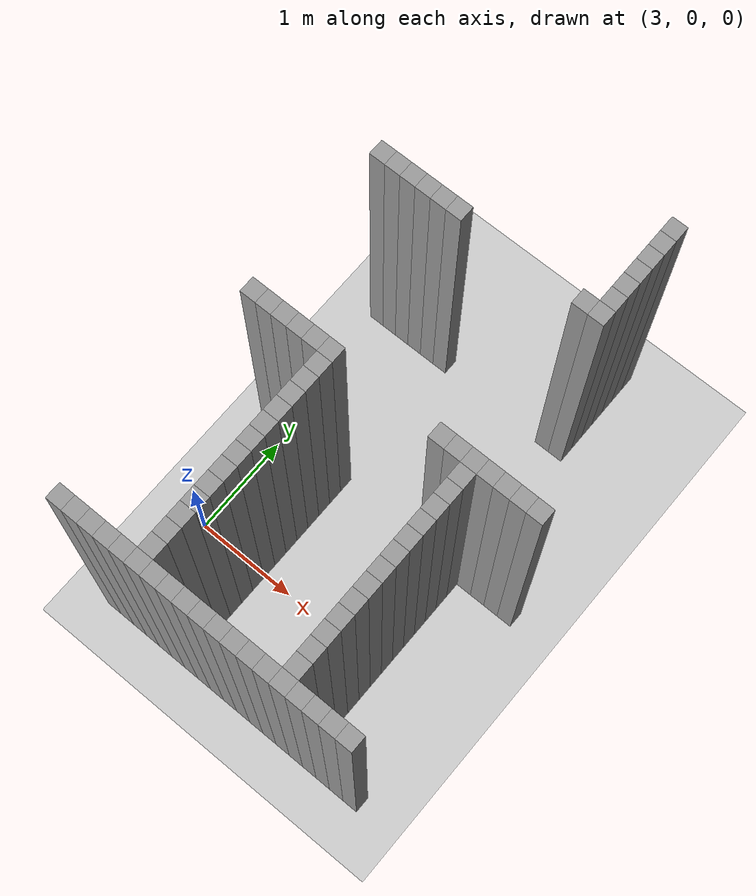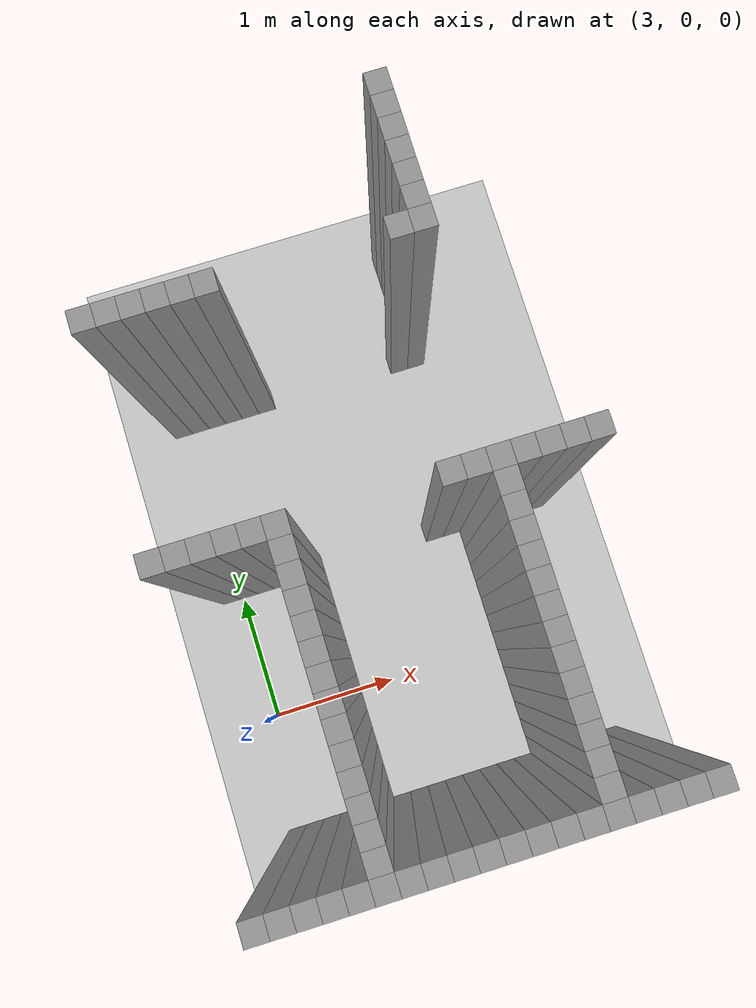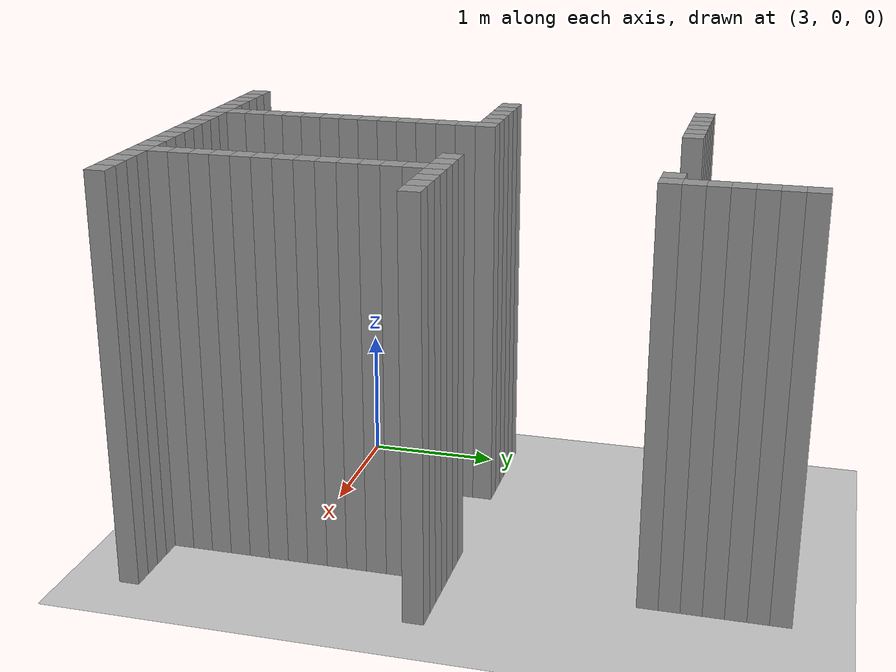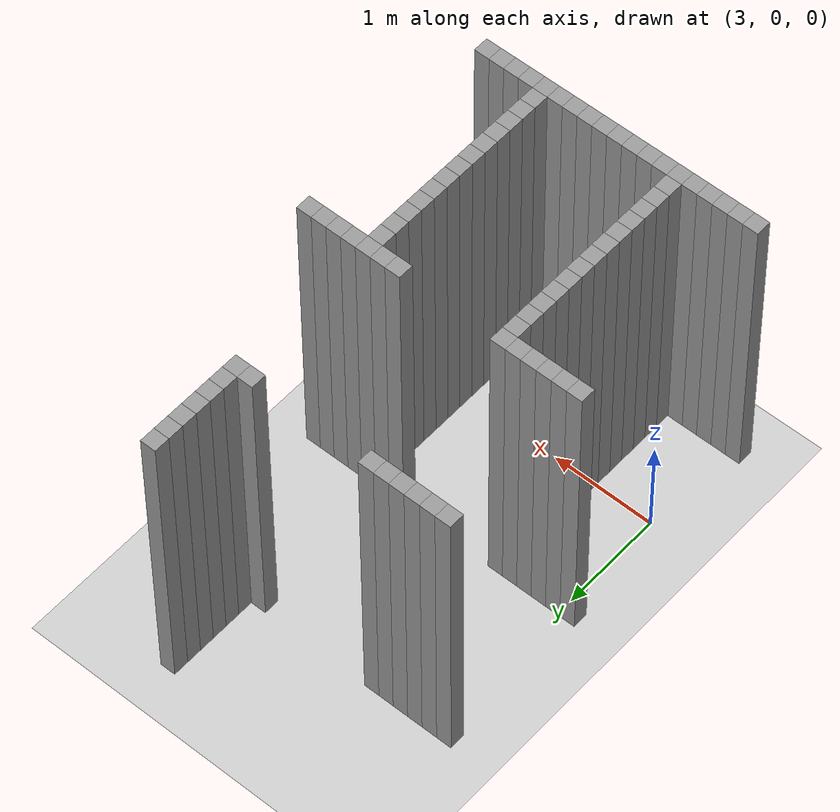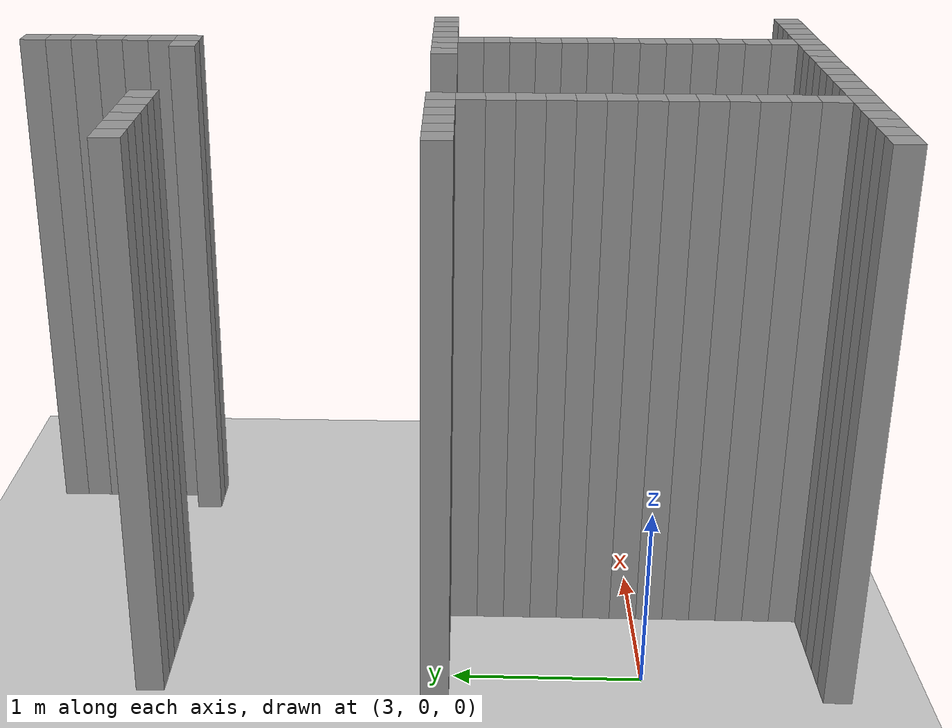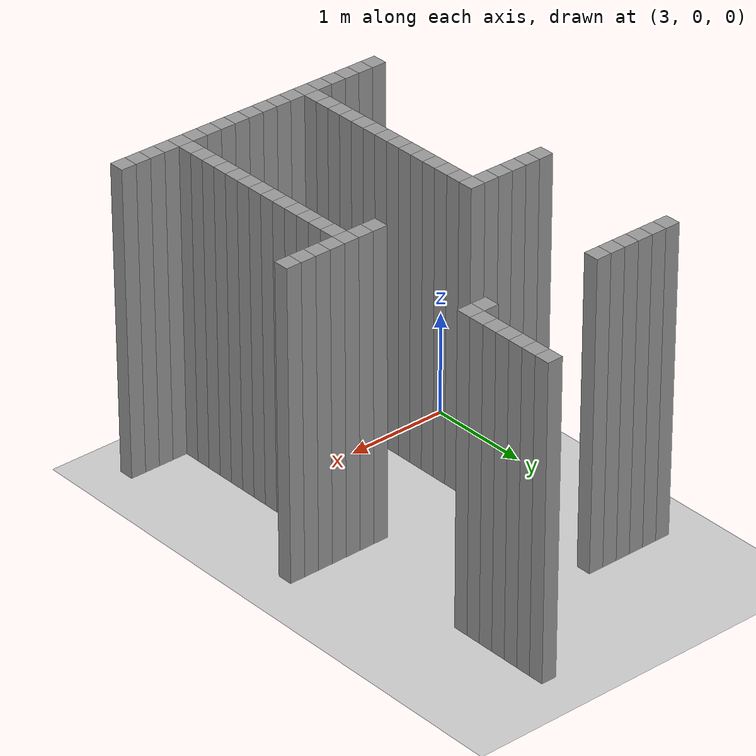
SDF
<sdf version="1.7">
 <world name="default">
  <model name="ground_plane">
   <static>1</static>
   <link name="link">
    <collision name="collision">
     <geometry><plane><normal>0 0 1</normal><size>100 100</size></plane></geometry>
     <surface>
      <contact><collide_bitmask>65535</collide_bitmask></contact>
      <friction><ode><mu>100</mu><mu2>50</mu2></ode></friction>
     </surface>
    </collision>
    <visual name="visual">
     <cast_shadows>0</cast_shadows>
     <geometry><plane><normal>0 0 1</normal><size>100 100</size></plane></geometry>
     <material>
      <script><uri>file://media/materials/scripts/gazebo.material</uri><name>Gazebo/Grey</name></script>
     </material>
    </visual>
   </link>
  </model>
  <model name="image45001">
   <pose>-1 -1 0 0 -0 0</pose>
   <link name="Wall_215">
    <collision name="Wall_215_Collision">
     <geometry><box><size>0.15 0.15 3</size></box></geometry>
     <pose>0 0 1.5 0 -0 0</pose>
    </collision>
    <visual name="Wall_215_Visual">
     <pose>0 0 1.5 0 -0 0</pose>
     <geometry><box><size>0.15 0.15 3</size></box></geometry>
     <material>
      <script><uri>file://media/materials/scripts/gazebo.material</uri><name>Gazebo/Grey</name></script>
      <ambient>1 1 1 1</ambient>
     </material>
     <meta><layer>0</layer></meta>
    </visual>
    <pose>3.9 0.0 0 0 -0 0</pose>
   </link>
   <link name="Wall_216">
    <collision name="Wall_216_Collision">
     <geometry><box><size>0.15 0.15 3</size></box></geometry>
     <pose>0 0 1.5 0 -0 0</pose>
    </collision>
    <visual name="Wall_216_Visual">
     <pose>0 0 1.5 0 -0 0</pose>
     <geometry><box><size>0.15 0.15 3</size></box></geometry>
     <material>
      <script><uri>file://media/materials/scripts/gazebo.material</uri><name>Gazebo/Grey</name></script>
      <ambient>1 1 1 1</ambient>
     </material>
     <meta><layer>0</layer></meta>
    </visual>
    <pose>3.9 2.1 0 0 -0 0</pose>
   </link>
   <link name="Wall_217">
    <collision name="Wall_217_Collision">
     <geometry><box><size>0.15 0.15 3</size></box></geometry>
     <pose>0 0 1.5 0 -0 0</pose>
    </collision>
    <visual name="Wall_217_Visual">
     <pose>0 0 1.5 0 -0 0</pose>
     <geometry><box><size>0.15 0.15 3</size></box></geometry>
     <material>
      <script><uri>file://media/materials/scripts/gazebo.material</uri><name>Gazebo/Grey</name></script>
      <ambient>1 1 1 1</ambient>
     </material>
     <meta><layer>0</layer></meta>
    </visual>
    <pose>3.9 3.5999999999999996 0 0 -0 0</pose>
   </link>
   <link name="Wall_220">
    <collision name="Wall_220_Collision">
     <geometry><box><size>0.15 0.15 3</size></box></geometry>
     <pose>0 0 1.5 0 -0 0</pose>
    </collision>
    <visual name="Wall_220_Visual">
     <pose>0 0 1.5 0 -0 0</pose>
     <geometry><box><size>0.15 0.15 3</size></box></geometry>
     <material>
      <script><uri>file://media/materials/scripts/gazebo.material</uri><name>Gazebo/Grey</name></script>
      <ambient>1 1 1 1</ambient>
     </material>
     <meta><layer>0</layer></meta>
    </visual>
    <pose>4.05 0.0 0 0 -0 0</pose>
   </link>
   <link name="Wall_221">
    <collision name="Wall_221_Collision">
     <geometry><box><size>0.15 0.15 3</size></box></geometry>
     <pose>0 0 1.5 0 -0 0</pose>
    </collision>
    <visual name="Wall_221_Visual">
     <pose>0 0 1.5 0 -0 0</pose>
     <geometry><box><size>0.15 0.15 3</size></box></geometry>
     <material>
      <script><uri>file://media/materials/scripts/gazebo.material</uri><name>Gazebo/Grey</name></script>
      <ambient>1 1 1 1</ambient>
     </material>
     <meta><layer>0</layer></meta>
    </visual>
    <pose>4.05 2.1 0 0 -0 0</pose>
   </link>
   <link name="Wall_222">
    <collision name="Wall_222_Collision">
     <geometry><box><size>0.15 0.15 3</size></box></geometry>
     <pose>0 0 1.5 0 -0 0</pose>
    </collision>
    <visual name="Wall_222_Visual">
     <pose>0 0 1.5 0 -0 0</pose>
     <geometry><box><size>0.15 0.15 3</size></box></geometry>
     <material>
      <script><uri>file://media/materials/scripts/gazebo.material</uri><name>Gazebo/Grey</name></script>
      <ambient>1 1 1 1</ambient>
     </material>
     <meta><layer>0</layer></meta>
    </visual>
    <pose>4.05 3.5999999999999996 0 0 -0 0</pose>
   </link>
   <link name="Wall_225">
    <collision name="Wall_225_Collision">
     <geometry><box><size>0.15 0.15 3</size></box></geometry>
     <pose>0 0 1.5 0 -0 0</pose>
    </collision>
    <visual name="Wall_225_Visual">
     <pose>0 0 1.5 0 -0 0</pose>
     <geometry><box><size>0.15 0.15 3</size></box></geometry>
     <material>
      <script><uri>file://media/materials/scripts/gazebo.material</uri><name>Gazebo/Grey</name></script>
      <ambient>1 1 1 1</ambient>
     </material>
     <meta><layer>0</layer></meta>
    </visual>
    <pose>4.2 0.0 0 0 -0 0</pose>
   </link>
   <link name="Wall_226">
    <collision name="Wall_226_Collision">
     <geometry><box><size>0.15 0.15 3</size></box></geometry>
     <pose>0 0 1.5 0 -0 0</pose>
    </collision>
    <visual name="Wall_226_Visual">
     <pose>0 0 1.5 0 -0 0</pose>
     <geometry><box><size>0.15 0.15 3</size></box></geometry>
     <material>
      <script><uri>file://media/materials/scripts/gazebo.material</uri><name>Gazebo/Grey</name></script>
      <ambient>1 1 1 1</ambient>
     </material>
     <meta><layer>0</layer></meta>
    </visual>
    <pose>4.2 2.1 0 0 -0 0</pose>
   </link>
   <link name="Wall_227">
    <collision name="Wall_227_Collision">
     <geometry><box><size>0.15 0.15 3</size></box></geometry>
     <pose>0 0 1.5 0 -0 0</pose>
    </collision>
    <visual name="Wall_227_Visual">
     <pose>0 0 1.5 0 -0 0</pose>
     <geometry><box><size>0.15 0.15 3</size></box></geometry>
     <material>
      <script><uri>file://media/materials/scripts/gazebo.material</uri><name>Gazebo/Grey</name></script>
      <ambient>1 1 1 1</ambient>
     </material>
     <meta><layer>0</layer></meta>
    </visual>
    <pose>4.2 3.5999999999999996 0 0 -0 0</pose>
   </link>
   <link name="Wall_231">
    <collision name="Wall_231_Collision">
     <geometry><box><size>0.15 0.15 3</size></box></geometry>
     <pose>0 0 1.5 0 -0 0</pose>
    </collision>
    <visual name="Wall_231_Visual">
     <pose>0 0 1.5 0 -0 0</pose>
     <geometry><box><size>0.15 0.15 3</size></box></geometry>
     <material>
      <script><uri>file://media/materials/scripts/gazebo.material</uri><name>Gazebo/Grey</name></script>
      <ambient>1 1 1 1</ambient>
     </material>
     <meta><layer>0</layer></meta>
    </visual>
    <pose>4.35 0.0 0 0 -0 0</pose>
   </link>
   <link name="Wall_232">
    <collision name="Wall_232_Collision">
     <geometry><box><size>0.15 0.15 3</size></box></geometry>
     <pose>0 0 1.5 0 -0 0</pose>
    </collision>
    <visual name="Wall_232_Visual">
     <pose>0 0 1.5 0 -0 0</pose>
     <geometry><box><size>0.15 0.15 3</size></box></geometry>
     <material>
      <script><uri>file://media/materials/scripts/gazebo.material</uri><name>Gazebo/Grey</name></script>
      <ambient>1 1 1 1</ambient>
     </material>
     <meta><layer>0</layer></meta>
    </visual>
    <pose>4.35 2.1 0 0 -0 0</pose>
   </link>
   <link name="Wall_233">
    <collision name="Wall_233_Collision">
     <geometry><box><size>0.15 0.15 3</size></box></geometry>
     <pose>0 0 1.5 0 -0 0</pose>
    </collision>
    <visual name="Wall_233_Visual">
     <pose>0 0 1.5 0 -0 0</pose>
     <geometry><box><size>0.15 0.15 3</size></box></geometry>
     <material>
      <script><uri>file://media/materials/scripts/gazebo.material</uri><name>Gazebo/Grey</name></script>
      <ambient>1 1 1 1</ambient>
     </material>
     <meta><layer>0</layer></meta>
    </visual>
    <pose>4.35 3.5999999999999996 0 0 -0 0</pose>
   </link>
   <link name="Wall_246">
    <collision name="Wall_246_Collision">
     <geometry><box><size>0.15 0.15 3</size></box></geometry>
     <pose>0 0 1.5 0 -0 0</pose>
    </collision>
    <visual name="Wall_246_Visual">
     <pose>0 0 1.5 0 -0 0</pose>
     <geometry><box><size>0.15 0.15 3</size></box></geometry>
     <material>
      <script><uri>file://media/materials/scripts/gazebo.material</uri><name>Gazebo/Grey</name></script>
      <ambient>1 1 1 1</ambient>
     </material>
     <meta><layer>0</layer></meta>
    </visual>
    <pose>4.5 0.0 0 0 -0 0</pose>
   </link>
   <link name="Wall_247">
    <collision name="Wall_247_Collision">
     <geometry><box><size>0.15 0.15 3</size></box></geometry>
     <pose>0 0 1.5 0 -0 0</pose>
    </collision>
    <visual name="Wall_247_Visual">
     <pose>0 0 1.5 0 -0 0</pose>
     <geometry><box><size>0.15 0.15 3</size></box></geometry>
     <material>
      <script><uri>file://media/materials/scripts/gazebo.material</uri><name>Gazebo/Grey</name></script>
      <ambient>1 1 1 1</ambient>
     </material>
     <meta><layer>0</layer></meta>
    </visual>
    <pose>4.5 2.1 0 0 -0 0</pose>
   </link>
   <link name="Wall_248">
    <collision name="Wall_248_Collision">
     <geometry><box><size>0.15 0.15 3</size></box></geometry>
     <pose>0 0 1.5 0 -0 0</pose>
    </collision>
    <visual name="Wall_248_Visual">
     <pose>0 0 1.5 0 -0 0</pose>
     <geometry><box><size>0.15 0.15 3</size></box></geometry>
     <material>
      <script><uri>file://media/materials/scripts/gazebo.material</uri><name>Gazebo/Grey</name></script>
      <ambient>1 1 1 1</ambient>
     </material>
     <meta><layer>0</layer></meta>
    </visual>
    <pose>4.5 3.5999999999999996 0 0 -0 0</pose>
   </link>
   <link name="Wall_252">
    <collision name="Wall_252_Collision">
     <geometry><box><size>0.15 0.15 3</size></box></geometry>
     <pose>0 0 1.5 0 -0 0</pose>
    </collision>
    <visual name="Wall_252_Visual">
     <pose>0 0 1.5 0 -0 0</pose>
     <geometry><box><size>0.15 0.15 3</size></box></geometry>
     <material>
      <script><uri>file://media/materials/scripts/gazebo.material</uri><name>Gazebo/Grey</name></script>
      <ambient>1 1 1 1</ambient>
     </material>
     <meta><layer>0</layer></meta>
    </visual>
    <pose>4.6499999999999995 0.0 0 0 -0 0</pose>
   </link>
   <link name="Wall_253">
    <collision name="Wall_253_Collision">
     <geometry><box><size>0.15 0.15 3</size></box></geometry>
     <pose>0 0 1.5 0 -0 0</pose>
    </collision>
    <visual name="Wall_253_Visual">
     <pose>0 0 1.5 0 -0 0</pose>
     <geometry><box><size>0.15 0.15 3</size></box></geometry>
     <material>
      <script><uri>file://media/materials/scripts/gazebo.material</uri><name>Gazebo/Grey</name></script>
      <ambient>1 1 1 1</ambient>
     </material>
     <meta><layer>0</layer></meta>
    </visual>
    <pose>4.6499999999999995 0.15 0 0 -0 0</pose>
   </link>
   <link name="Wall_254">
    <collision name="Wall_254_Collision">
     <geometry><box><size>0.15 0.15 3</size></box></geometry>
     <pose>0 0 1.5 0 -0 0</pose>
    </collision>
    <visual name="Wall_254_Visual">
     <pose>0 0 1.5 0 -0 0</pose>
     <geometry><box><size>0.15 0.15 3</size></box></geometry>
     <material>
      <script><uri>file://media/materials/scripts/gazebo.material</uri><name>Gazebo/Grey</name></script>
      <ambient>1 1 1 1</ambient>
     </material>
     <meta><layer>0</layer></meta>
    </visual>
    <pose>4.6499999999999995 0.3 0 0 -0 0</pose>
   </link>
   <link name="Wall_255">
    <collision name="Wall_255_Collision">
     <geometry><box><size>0.15 0.15 3</size></box></geometry>
     <pose>0 0 1.5 0 -0 0</pose>
    </collision>
    <visual name="Wall_255_Visual">
     <pose>0 0 1.5 0 -0 0</pose>
     <geometry><box><size>0.15 0.15 3</size></box></geometry>
     <material>
      <script><uri>file://media/materials/scripts/gazebo.material</uri><name>Gazebo/Grey</name></script>
      <ambient>1 1 1 1</ambient>
     </material>
     <meta><layer>0</layer></meta>
    </visual>
    <pose>4.6499999999999995 0.44999999999999996 0 0 -0 0</pose>
   </link>
   <link name="Wall_256">
    <collision name="Wall_256_Collision">
     <geometry><box><size>0.15 0.15 3</size></box></geometry>
     <pose>0 0 1.5 0 -0 0</pose>
    </collision>
    <visual name="Wall_256_Visual">
     <pose>0 0 1.5 0 -0 0</pose>
     <geometry><box><size>0.15 0.15 3</size></box></geometry>
     <material>
      <script><uri>file://media/materials/scripts/gazebo.material</uri><name>Gazebo/Grey</name></script>
      <ambient>1 1 1 1</ambient>
     </material>
     <meta><layer>0</layer></meta>
    </visual>
    <pose>4.6499999999999995 0.6 0 0 -0 0</pose>
   </link>
   <link name="Wall_257">
    <collision name="Wall_257_Collision">
     <geometry><box><size>0.15 0.15 3</size></box></geometry>
     <pose>0 0 1.5 0 -0 0</pose>
    </collision>
    <visual name="Wall_257_Visual">
     <pose>0 0 1.5 0 -0 0</pose>
     <geometry><box><size>0.15 0.15 3</size></box></geometry>
     <material>
      <script><uri>file://media/materials/scripts/gazebo.material</uri><name>Gazebo/Grey</name></script>
      <ambient>1 1 1 1</ambient>
     </material>
     <meta><layer>0</layer></meta>
    </visual>
    <pose>4.6499999999999995 0.75 0 0 -0 0</pose>
   </link>
   <link name="Wall_258">
    <collision name="Wall_258_Collision">
     <geometry><box><size>0.15 0.15 3</size></box></geometry>
     <pose>0 0 1.5 0 -0 0</pose>
    </collision>
    <visual name="Wall_258_Visual">
     <pose>0 0 1.5 0 -0 0</pose>
     <geometry><box><size>0.15 0.15 3</size></box></geometry>
     <material>
      <script><uri>file://media/materials/scripts/gazebo.material</uri><name>Gazebo/Grey</name></script>
      <ambient>1 1 1 1</ambient>
     </material>
     <meta><layer>0</layer></meta>
    </visual>
    <pose>4.6499999999999995 0.8999999999999999 0 0 -0 0</pose>
   </link>
   <link name="Wall_259">
    <collision name="Wall_259_Collision">
     <geometry><box><size>0.15 0.15 3</size></box></geometry>
     <pose>0 0 1.5 0 -0 0</pose>
    </collision>
    <visual name="Wall_259_Visual">
     <pose>0 0 1.5 0 -0 0</pose>
     <geometry><box><size>0.15 0.15 3</size></box></geometry>
     <material>
      <script><uri>file://media/materials/scripts/gazebo.material</uri><name>Gazebo/Grey</name></script>
      <ambient>1 1 1 1</ambient>
     </material>
     <meta><layer>0</layer></meta>
    </visual>
    <pose>4.6499999999999995 1.05 0 0 -0 0</pose>
   </link>
   <link name="Wall_260">
    <collision name="Wall_260_Collision">
     <geometry><box><size>0.15 0.15 3</size></box></geometry>
     <pose>0 0 1.5 0 -0 0</pose>
    </collision>
    <visual name="Wall_260_Visual">
     <pose>0 0 1.5 0 -0 0</pose>
     <geometry><box><size>0.15 0.15 3</size></box></geometry>
     <material>
      <script><uri>file://media/materials/scripts/gazebo.material</uri><name>Gazebo/Grey</name></script>
      <ambient>1 1 1 1</ambient>
     </material>
     <meta><layer>0</layer></meta>
    </visual>
    <pose>4.6499999999999995 1.2 0 0 -0 0</pose>
   </link>
   <link name="Wall_261">
    <collision name="Wall_261_Collision">
     <geometry><box><size>0.15 0.15 3</size></box></geometry>
     <pose>0 0 1.5 0 -0 0</pose>
    </collision>
    <visual name="Wall_261_Visual">
     <pose>0 0 1.5 0 -0 0</pose>
     <geometry><box><size>0.15 0.15 3</size></box></geometry>
     <material>
      <script><uri>file://media/materials/scripts/gazebo.material</uri><name>Gazebo/Grey</name></script>
      <ambient>1 1 1 1</ambient>
     </material>
     <meta><layer>0</layer></meta>
    </visual>
    <pose>4.6499999999999995 1.3499999999999999 0 0 -0 0</pose>
   </link>
   <link name="Wall_262">
    <collision name="Wall_262_Collision">
     <geometry><box><size>0.15 0.15 3</size></box></geometry>
     <pose>0 0 1.5 0 -0 0</pose>
    </collision>
    <visual name="Wall_262_Visual">
     <pose>0 0 1.5 0 -0 0</pose>
     <geometry><box><size>0.15 0.15 3</size></box></geometry>
     <material>
      <script><uri>file://media/materials/scripts/gazebo.material</uri><name>Gazebo/Grey</name></script>
      <ambient>1 1 1 1</ambient>
     </material>
     <meta><layer>0</layer></meta>
    </visual>
    <pose>4.6499999999999995 1.5 0 0 -0 0</pose>
   </link>
   <link name="Wall_263">
    <collision name="Wall_263_Collision">
     <geometry><box><size>0.15 0.15 3</size></box></geometry>
     <pose>0 0 1.5 0 -0 0</pose>
    </collision>
    <visual name="Wall_263_Visual">
     <pose>0 0 1.5 0 -0 0</pose>
     <geometry><box><size>0.15 0.15 3</size></box></geometry>
     <material>
      <script><uri>file://media/materials/scripts/gazebo.material</uri><name>Gazebo/Grey</name></script>
      <ambient>1 1 1 1</ambient>
     </material>
     <meta><layer>0</layer></meta>
    </visual>
    <pose>4.6499999999999995 1.65 0 0 -0 0</pose>
   </link>
   <link name="Wall_264">
    <collision name="Wall_264_Collision">
     <geometry><box><size>0.15 0.15 3</size></box></geometry>
     <pose>0 0 1.5 0 -0 0</pose>
    </collision>
    <visual name="Wall_264_Visual">
     <pose>0 0 1.5 0 -0 0</pose>
     <geometry><box><size>0.15 0.15 3</size></box></geometry>
     <material>
      <script><uri>file://media/materials/scripts/gazebo.material</uri><name>Gazebo/Grey</name></script>
      <ambient>1 1 1 1</ambient>
     </material>
     <meta><layer>0</layer></meta>
    </visual>
    <pose>4.6499999999999995 1.7999999999999998 0 0 -0 0</pose>
   </link>
   <link name="Wall_265">
    <collision name="Wall_265_Collision">
     <geometry><box><size>0.15 0.15 3</size></box></geometry>
     <pose>0 0 1.5 0 -0 0</pose>
    </collision>
    <visual name="Wall_265_Visual">
     <pose>0 0 1.5 0 -0 0</pose>
     <geometry><box><size>0.15 0.15 3</size></box></geometry>
     <material>
      <script><uri>file://media/materials/scripts/gazebo.material</uri><name>Gazebo/Grey</name></script>
      <ambient>1 1 1 1</ambient>
     </material>
     <meta><layer>0</layer></meta>
    </visual>
    <pose>4.6499999999999995 1.95 0 0 -0 0</pose>
   </link>
   <link name="Wall_266">
    <collision name="Wall_266_Collision">
     <geometry><box><size>0.15 0.15 3</size></box></geometry>
     <pose>0 0 1.5 0 -0 0</pose>
    </collision>
    <visual name="Wall_266_Visual">
     <pose>0 0 1.5 0 -0 0</pose>
     <geometry><box><size>0.15 0.15 3</size></box></geometry>
     <material>
      <script><uri>file://media/materials/scripts/gazebo.material</uri><name>Gazebo/Grey</name></script>
      <ambient>1 1 1 1</ambient>
     </material>
     <meta><layer>0</layer></meta>
    </visual>
    <pose>4.6499999999999995 2.1 0 0 -0 0</pose>
   </link>
   <link name="Wall_267">
    <collision name="Wall_267_Collision">
     <geometry><box><size>0.15 0.15 3</size></box></geometry>
     <pose>0 0 1.5 0 -0 0</pose>
    </collision>
    <visual name="Wall_267_Visual">
     <pose>0 0 1.5 0 -0 0</pose>
     <geometry><box><size>0.15 0.15 3</size></box></geometry>
     <material>
      <script><uri>file://media/materials/scripts/gazebo.material</uri><name>Gazebo/Grey</name></script>
      <ambient>1 1 1 1</ambient>
     </material>
     <meta><layer>0</layer></meta>
    </visual>
    <pose>4.6499999999999995 3.5999999999999996 0 0 -0 0</pose>
   </link>
   <link name="Wall_271">
    <collision name="Wall_271_Collision">
     <geometry><box><size>0.15 0.15 3</size></box></geometry>
     <pose>0 0 1.5 0 -0 0</pose>
    </collision>
    <visual name="Wall_271_Visual">
     <pose>0 0 1.5 0 -0 0</pose>
     <geometry><box><size>0.15 0.15 3</size></box></geometry>
     <material>
      <script><uri>file://media/materials/scripts/gazebo.material</uri><name>Gazebo/Grey</name></script>
      <ambient>1 1 1 1</ambient>
     </material>
     <meta><layer>0</layer></meta>
    </visual>
    <pose>4.8 0.0 0 0 -0 0</pose>
   </link>
   <link name="Wall_275">
    <collision name="Wall_275_Collision">
     <geometry><box><size>0.15 0.15 3</size></box></geometry>
     <pose>0 0 1.5 0 -0 0</pose>
    </collision>
    <visual name="Wall_275_Visual">
     <pose>0 0 1.5 0 -0 0</pose>
     <geometry><box><size>0.15 0.15 3</size></box></geometry>
     <material>
      <script><uri>file://media/materials/scripts/gazebo.material</uri><name>Gazebo/Grey</name></script>
      <ambient>1 1 1 1</ambient>
     </material>
     <meta><layer>0</layer></meta>
    </visual>
    <pose>4.95 0.0 0 0 -0 0</pose>
   </link>
   <link name="Wall_279">
    <collision name="Wall_279_Collision">
     <geometry><box><size>0.15 0.15 3</size></box></geometry>
     <pose>0 0 1.5 0 -0 0</pose>
    </collision>
    <visual name="Wall_279_Visual">
     <pose>0 0 1.5 0 -0 0</pose>
     <geometry><box><size>0.15 0.15 3</size></box></geometry>
     <material>
      <script><uri>file://media/materials/scripts/gazebo.material</uri><name>Gazebo/Grey</name></script>
      <ambient>1 1 1 1</ambient>
     </material>
     <meta><layer>0</layer></meta>
    </visual>
    <pose>5.1 0.0 0 0 -0 0</pose>
   </link>
   <link name="Wall_283">
    <collision name="Wall_283_Collision">
     <geometry><box><size>0.15 0.15 3</size></box></geometry>
     <pose>0 0 1.5 0 -0 0</pose>
    </collision>
    <visual name="Wall_283_Visual">
     <pose>0 0 1.5 0 -0 0</pose>
     <geometry><box><size>0.15 0.15 3</size></box></geometry>
     <material>
      <script><uri>file://media/materials/scripts/gazebo.material</uri><name>Gazebo/Grey</name></script>
      <ambient>1 1 1 1</ambient>
     </material>
     <meta><layer>0</layer></meta>
    </visual>
    <pose>5.25 0.0 0 0 -0 0</pose>
   </link>
   <link name="Wall_287">
    <collision name="Wall_287_Collision">
     <geometry><box><size>0.15 0.15 3</size></box></geometry>
     <pose>0 0 1.5 0 -0 0</pose>
    </collision>
    <visual name="Wall_287_Visual">
     <pose>0 0 1.5 0 -0 0</pose>
     <geometry><box><size>0.15 0.15 3</size></box></geometry>
     <material>
      <script><uri>file://media/materials/scripts/gazebo.material</uri><name>Gazebo/Grey</name></script>
      <ambient>1 1 1 1</ambient>
     </material>
     <meta><layer>0</layer></meta>
    </visual>
    <pose>5.3999999999999995 0.0 0 0 -0 0</pose>
   </link>
   <link name="Wall_291">
    <collision name="Wall_291_Collision">
     <geometry><box><size>0.15 0.15 3</size></box></geometry>
     <pose>0 0 1.5 0 -0 0</pose>
    </collision>
    <visual name="Wall_291_Visual">
     <pose>0 0 1.5 0 -0 0</pose>
     <geometry><box><size>0.15 0.15 3</size></box></geometry>
     <material>
      <script><uri>file://media/materials/scripts/gazebo.material</uri><name>Gazebo/Grey</name></script>
      <ambient>1 1 1 1</ambient>
     </material>
     <meta><layer>0</layer></meta>
    </visual>
    <pose>5.55 0.0 0 0 -0 0</pose>
   </link>
   <link name="Wall_294">
    <collision name="Wall_294_Collision">
     <geometry><box><size>0.15 0.15 3</size></box></geometry>
     <pose>0 0 1.5 0 -0 0</pose>
    </collision>
    <visual name="Wall_294_Visual">
     <pose>0 0 1.5 0 -0 0</pose>
     <geometry><box><size>0.15 0.15 3</size></box></geometry>
     <material>
      <script><uri>file://media/materials/scripts/gazebo.material</uri><name>Gazebo/Grey</name></script>
      <ambient>1 1 1 1</ambient>
     </material>
     <meta><layer>0</layer></meta>
    </visual>
    <pose>5.7 0.0 0 0 -0 0</pose>
   </link>
   <link name="Wall_295">
    <collision name="Wall_295_Collision">
     <geometry><box><size>0.15 0.15 3</size></box></geometry>
     <pose>0 0 1.5 0 -0 0</pose>
    </collision>
    <visual name="Wall_295_Visual">
     <pose>0 0 1.5 0 -0 0</pose>
     <geometry><box><size>0.15 0.15 3</size></box></geometry>
     <material>
      <script><uri>file://media/materials/scripts/gazebo.material</uri><name>Gazebo/Grey</name></script>
      <ambient>1 1 1 1</ambient>
     </material>
     <meta><layer>0</layer></meta>
    </visual>
    <pose>5.7 2.1 0 0 -0 0</pose>
   </link>
   <link name="Wall_298">
    <collision name="Wall_298_Collision">
     <geometry><box><size>0.15 0.15 3</size></box></geometry>
     <pose>0 0 1.5 0 -0 0</pose>
    </collision>
    <visual name="Wall_298_Visual">
     <pose>0 0 1.5 0 -0 0</pose>
     <geometry><box><size>0.15 0.15 3</size></box></geometry>
     <material>
      <script><uri>file://media/materials/scripts/gazebo.material</uri><name>Gazebo/Grey</name></script>
      <ambient>1 1 1 1</ambient>
     </material>
     <meta><layer>0</layer></meta>
    </visual>
    <pose>5.85 0.0 0 0 -0 0</pose>
   </link>
   <link name="Wall_299">
    <collision name="Wall_299_Collision">
     <geometry><box><size>0.15 0.15 3</size></box></geometry>
     <pose>0 0 1.5 0 -0 0</pose>
    </collision>
    <visual name="Wall_299_Visual">
     <pose>0 0 1.5 0 -0 0</pose>
     <geometry><box><size>0.15 0.15 3</size></box></geometry>
     <material>
      <script><uri>file://media/materials/scripts/gazebo.material</uri><name>Gazebo/Grey</name></script>
      <ambient>1 1 1 1</ambient>
     </material>
     <meta><layer>0</layer></meta>
    </visual>
    <pose>5.85 2.1 0 0 -0 0</pose>
   </link>
   <link name="Wall_300">
    <collision name="Wall_300_Collision">
     <geometry><box><size>0.15 0.15 3</size></box></geometry>
     <pose>0 0 1.5 0 -0 0</pose>
    </collision>
    <visual name="Wall_300_Visual">
     <pose>0 0 1.5 0 -0 0</pose>
     <geometry><box><size>0.15 0.15 3</size></box></geometry>
     <material>
      <script><uri>file://media/materials/scripts/gazebo.material</uri><name>Gazebo/Grey</name></script>
      <ambient>1 1 1 1</ambient>
     </material>
     <meta><layer>0</layer></meta>
    </visual>
    <pose>5.85 3.5999999999999996 0 0 -0 0</pose>
   </link>
   <link name="Wall_303">
    <collision name="Wall_303_Collision">
     <geometry><box><size>0.15 0.15 3</size></box></geometry>
     <pose>0 0 1.5 0 -0 0</pose>
    </collision>
    <visual name="Wall_303_Visual">
     <pose>0 0 1.5 0 -0 0</pose>
     <geometry><box><size>0.15 0.15 3</size></box></geometry>
     <material>
      <script><uri>file://media/materials/scripts/gazebo.material</uri><name>Gazebo/Grey</name></script>
      <ambient>1 1 1 1</ambient>
     </material>
     <meta><layer>0</layer></meta>
    </visual>
    <pose>6.0 0.0 0 0 -0 0</pose>
   </link>
   <link name="Wall_304">
    <collision name="Wall_304_Collision">
     <geometry><box><size>0.15 0.15 3</size></box></geometry>
     <pose>0 0 1.5 0 -0 0</pose>
    </collision>
    <visual name="Wall_304_Visual">
     <pose>0 0 1.5 0 -0 0</pose>
     <geometry><box><size>0.15 0.15 3</size></box></geometry>
     <material>
      <script><uri>file://media/materials/scripts/gazebo.material</uri><name>Gazebo/Grey</name></script>
      <ambient>1 1 1 1</ambient>
     </material>
     <meta><layer>0</layer></meta>
    </visual>
    <pose>6.0 0.15 0 0 -0 0</pose>
   </link>
   <link name="Wall_305">
    <collision name="Wall_305_Collision">
     <geometry><box><size>0.15 0.15 3</size></box></geometry>
     <pose>0 0 1.5 0 -0 0</pose>
    </collision>
    <visual name="Wall_305_Visual">
     <pose>0 0 1.5 0 -0 0</pose>
     <geometry><box><size>0.15 0.15 3</size></box></geometry>
     <material>
      <script><uri>file://media/materials/scripts/gazebo.material</uri><name>Gazebo/Grey</name></script>
      <ambient>1 1 1 1</ambient>
     </material>
     <meta><layer>0</layer></meta>
    </visual>
    <pose>6.0 0.3 0 0 -0 0</pose>
   </link>
   <link name="Wall_306">
    <collision name="Wall_306_Collision">
     <geometry><box><size>0.15 0.15 3</size></box></geometry>
     <pose>0 0 1.5 0 -0 0</pose>
    </collision>
    <visual name="Wall_306_Visual">
     <pose>0 0 1.5 0 -0 0</pose>
     <geometry><box><size>0.15 0.15 3</size></box></geometry>
     <material>
      <script><uri>file://media/materials/scripts/gazebo.material</uri><name>Gazebo/Grey</name></script>
      <ambient>1 1 1 1</ambient>
     </material>
     <meta><layer>0</layer></meta>
    </visual>
    <pose>6.0 0.44999999999999996 0 0 -0 0</pose>
   </link>
   <link name="Wall_307">
    <collision name="Wall_307_Collision">
     <geometry><box><size>0.15 0.15 3</size></box></geometry>
     <pose>0 0 1.5 0 -0 0</pose>
    </collision>
    <visual name="Wall_307_Visual">
     <pose>0 0 1.5 0 -0 0</pose>
     <geometry><box><size>0.15 0.15 3</size></box></geometry>
     <material>
      <script><uri>file://media/materials/scripts/gazebo.material</uri><name>Gazebo/Grey</name></script>
      <ambient>1 1 1 1</ambient>
     </material>
     <meta><layer>0</layer></meta>
    </visual>
    <pose>6.0 0.6 0 0 -0 0</pose>
   </link>
   <link name="Wall_308">
    <collision name="Wall_308_Collision">
     <geometry><box><size>0.15 0.15 3</size></box></geometry>
     <pose>0 0 1.5 0 -0 0</pose>
    </collision>
    <visual name="Wall_308_Visual">
     <pose>0 0 1.5 0 -0 0</pose>
     <geometry><box><size>0.15 0.15 3</size></box></geometry>
     <material>
      <script><uri>file://media/materials/scripts/gazebo.material</uri><name>Gazebo/Grey</name></script>
      <ambient>1 1 1 1</ambient>
     </material>
     <meta><layer>0</layer></meta>
    </visual>
    <pose>6.0 0.75 0 0 -0 0</pose>
   </link>
   <link name="Wall_309">
    <collision name="Wall_309_Collision">
     <geometry><box><size>0.15 0.15 3</size></box></geometry>
     <pose>0 0 1.5 0 -0 0</pose>
    </collision>
    <visual name="Wall_309_Visual">
     <pose>0 0 1.5 0 -0 0</pose>
     <geometry><box><size>0.15 0.15 3</size></box></geometry>
     <material>
      <script><uri>file://media/materials/scripts/gazebo.material</uri><name>Gazebo/Grey</name></script>
      <ambient>1 1 1 1</ambient>
     </material>
     <meta><layer>0</layer></meta>
    </visual>
    <pose>6.0 0.8999999999999999 0 0 -0 0</pose>
   </link>
   <link name="Wall_310">
    <collision name="Wall_310_Collision">
     <geometry><box><size>0.15 0.15 3</size></box></geometry>
     <pose>0 0 1.5 0 -0 0</pose>
    </collision>
    <visual name="Wall_310_Visual">
     <pose>0 0 1.5 0 -0 0</pose>
     <geometry><box><size>0.15 0.15 3</size></box></geometry>
     <material>
      <script><uri>file://media/materials/scripts/gazebo.material</uri><name>Gazebo/Grey</name></script>
      <ambient>1 1 1 1</ambient>
     </material>
     <meta><layer>0</layer></meta>
    </visual>
    <pose>6.0 1.05 0 0 -0 0</pose>
   </link>
   <link name="Wall_311">
    <collision name="Wall_311_Collision">
     <geometry><box><size>0.15 0.15 3</size></box></geometry>
     <pose>0 0 1.5 0 -0 0</pose>
    </collision>
    <visual name="Wall_311_Visual">
     <pose>0 0 1.5 0 -0 0</pose>
     <geometry><box><size>0.15 0.15 3</size></box></geometry>
     <material>
      <script><uri>file://media/materials/scripts/gazebo.material</uri><name>Gazebo/Grey</name></script>
      <ambient>1 1 1 1</ambient>
     </material>
     <meta><layer>0</layer></meta>
    </visual>
    <pose>6.0 1.2 0 0 -0 0</pose>
   </link>
   <link name="Wall_312">
    <collision name="Wall_312_Collision">
     <geometry><box><size>0.15 0.15 3</size></box></geometry>
     <pose>0 0 1.5 0 -0 0</pose>
    </collision>
    <visual name="Wall_312_Visual">
     <pose>0 0 1.5 0 -0 0</pose>
     <geometry><box><size>0.15 0.15 3</size></box></geometry>
     <material>
      <script><uri>file://media/materials/scripts/gazebo.material</uri><name>Gazebo/Grey</name></script>
      <ambient>1 1 1 1</ambient>
     </material>
     <meta><layer>0</layer></meta>
    </visual>
    <pose>6.0 1.3499999999999999 0 0 -0 0</pose>
   </link>
   <link name="Wall_313">
    <collision name="Wall_313_Collision">
     <geometry><box><size>0.15 0.15 3</size></box></geometry>
     <pose>0 0 1.5 0 -0 0</pose>
    </collision>
    <visual name="Wall_313_Visual">
     <pose>0 0 1.5 0 -0 0</pose>
     <geometry><box><size>0.15 0.15 3</size></box></geometry>
     <material>
      <script><uri>file://media/materials/scripts/gazebo.material</uri><name>Gazebo/Grey</name></script>
      <ambient>1 1 1 1</ambient>
     </material>
     <meta><layer>0</layer></meta>
    </visual>
    <pose>6.0 1.5 0 0 -0 0</pose>
   </link>
   <link name="Wall_314">
    <collision name="Wall_314_Collision">
     <geometry><box><size>0.15 0.15 3</size></box></geometry>
     <pose>0 0 1.5 0 -0 0</pose>
    </collision>
    <visual name="Wall_314_Visual">
     <pose>0 0 1.5 0 -0 0</pose>
     <geometry><box><size>0.15 0.15 3</size></box></geometry>
     <material>
      <script><uri>file://media/materials/scripts/gazebo.material</uri><name>Gazebo/Grey</name></script>
      <ambient>1 1 1 1</ambient>
     </material>
     <meta><layer>0</layer></meta>
    </visual>
    <pose>6.0 1.65 0 0 -0 0</pose>
   </link>
   <link name="Wall_315">
    <collision name="Wall_315_Collision">
     <geometry><box><size>0.15 0.15 3</size></box></geometry>
     <pose>0 0 1.5 0 -0 0</pose>
    </collision>
    <visual name="Wall_315_Visual">
     <pose>0 0 1.5 0 -0 0</pose>
     <geometry><box><size>0.15 0.15 3</size></box></geometry>
     <material>
      <script><uri>file://media/materials/scripts/gazebo.material</uri><name>Gazebo/Grey</name></script>
      <ambient>1 1 1 1</ambient>
     </material>
     <meta><layer>0</layer></meta>
    </visual>
    <pose>6.0 1.7999999999999998 0 0 -0 0</pose>
   </link>
   <link name="Wall_316">
    <collision name="Wall_316_Collision">
     <geometry><box><size>0.15 0.15 3</size></box></geometry>
     <pose>0 0 1.5 0 -0 0</pose>
    </collision>
    <visual name="Wall_316_Visual">
     <pose>0 0 1.5 0 -0 0</pose>
     <geometry><box><size>0.15 0.15 3</size></box></geometry>
     <material>
      <script><uri>file://media/materials/scripts/gazebo.material</uri><name>Gazebo/Grey</name></script>
      <ambient>1 1 1 1</ambient>
     </material>
     <meta><layer>0</layer></meta>
    </visual>
    <pose>6.0 1.95 0 0 -0 0</pose>
   </link>
   <link name="Wall_317">
    <collision name="Wall_317_Collision">
     <geometry><box><size>0.15 0.15 3</size></box></geometry>
     <pose>0 0 1.5 0 -0 0</pose>
    </collision>
    <visual name="Wall_317_Visual">
     <pose>0 0 1.5 0 -0 0</pose>
     <geometry><box><size>0.15 0.15 3</size></box></geometry>
     <material>
      <script><uri>file://media/materials/scripts/gazebo.material</uri><name>Gazebo/Grey</name></script>
      <ambient>1 1 1 1</ambient>
     </material>
     <meta><layer>0</layer></meta>
    </visual>
    <pose>6.0 2.1 0 0 -0 0</pose>
   </link>
   <link name="Wall_318">
    <collision name="Wall_318_Collision">
     <geometry><box><size>0.15 0.15 3</size></box></geometry>
     <pose>0 0 1.5 0 -0 0</pose>
    </collision>
    <visual name="Wall_318_Visual">
     <pose>0 0 1.5 0 -0 0</pose>
     <geometry><box><size>0.15 0.15 3</size></box></geometry>
     <material>
      <script><uri>file://media/materials/scripts/gazebo.material</uri><name>Gazebo/Grey</name></script>
      <ambient>1 1 1 1</ambient>
     </material>
     <meta><layer>0</layer></meta>
    </visual>
    <pose>6.0 3.5999999999999996 0 0 -0 0</pose>
   </link>
   <link name="Wall_319">
    <collision name="Wall_319_Collision">
     <geometry><box><size>0.15 0.15 3</size></box></geometry>
     <pose>0 0 1.5 0 -0 0</pose>
    </collision>
    <visual name="Wall_319_Visual">
     <pose>0 0 1.5 0 -0 0</pose>
     <geometry><box><size>0.15 0.15 3</size></box></geometry>
     <material>
      <script><uri>file://media/materials/scripts/gazebo.material</uri><name>Gazebo/Grey</name></script>
      <ambient>1 1 1 1</ambient>
     </material>
     <meta><layer>0</layer></meta>
    </visual>
    <pose>6.0 3.75 0 0 -0 0</pose>
   </link>
   <link name="Wall_320">
    <collision name="Wall_320_Collision">
     <geometry><box><size>0.15 0.15 3</size></box></geometry>
     <pose>0 0 1.5 0 -0 0</pose>
    </collision>
    <visual name="Wall_320_Visual">
     <pose>0 0 1.5 0 -0 0</pose>
     <geometry><box><size>0.15 0.15 3</size></box></geometry>
     <material>
      <script><uri>file://media/materials/scripts/gazebo.material</uri><name>Gazebo/Grey</name></script>
      <ambient>1 1 1 1</ambient>
     </material>
     <meta><layer>0</layer></meta>
    </visual>
    <pose>6.0 3.9 0 0 -0 0</pose>
   </link>
   <link name="Wall_321">
    <collision name="Wall_321_Collision">
     <geometry><box><size>0.15 0.15 3</size></box></geometry>
     <pose>0 0 1.5 0 -0 0</pose>
    </collision>
    <visual name="Wall_321_Visual">
     <pose>0 0 1.5 0 -0 0</pose>
     <geometry><box><size>0.15 0.15 3</size></box></geometry>
     <material>
      <script><uri>file://media/materials/scripts/gazebo.material</uri><name>Gazebo/Grey</name></script>
      <ambient>1 1 1 1</ambient>
     </material>
     <meta><layer>0</layer></meta>
    </visual>
    <pose>6.0 4.05 0 0 -0 0</pose>
   </link>
   <link name="Wall_322">
    <collision name="Wall_322_Collision">
     <geometry><box><size>0.15 0.15 3</size></box></geometry>
     <pose>0 0 1.5 0 -0 0</pose>
    </collision>
    <visual name="Wall_322_Visual">
     <pose>0 0 1.5 0 -0 0</pose>
     <geometry><box><size>0.15 0.15 3</size></box></geometry>
     <material>
      <script><uri>file://media/materials/scripts/gazebo.material</uri><name>Gazebo/Grey</name></script>
      <ambient>1 1 1 1</ambient>
     </material>
     <meta><layer>0</layer></meta>
    </visual>
    <pose>6.0 4.2 0 0 -0 0</pose>
   </link>
   <link name="Wall_323">
    <collision name="Wall_323_Collision">
     <geometry><box><size>0.15 0.15 3</size></box></geometry>
     <pose>0 0 1.5 0 -0 0</pose>
    </collision>
    <visual name="Wall_323_Visual">
     <pose>0 0 1.5 0 -0 0</pose>
     <geometry><box><size>0.15 0.15 3</size></box></geometry>
     <material>
      <script><uri>file://media/materials/scripts/gazebo.material</uri><name>Gazebo/Grey</name></script>
      <ambient>1 1 1 1</ambient>
     </material>
     <meta><layer>0</layer></meta>
    </visual>
    <pose>6.0 4.35 0 0 -0 0</pose>
   </link>
   <link name="Wall_324">
    <collision name="Wall_324_Collision">
     <geometry><box><size>0.15 0.15 3</size></box></geometry>
     <pose>0 0 1.5 0 -0 0</pose>
    </collision>
    <visual name="Wall_324_Visual">
     <pose>0 0 1.5 0 -0 0</pose>
     <geometry><box><size>0.15 0.15 3</size></box></geometry>
     <material>
      <script><uri>file://media/materials/scripts/gazebo.material</uri><name>Gazebo/Grey</name></script>
      <ambient>1 1 1 1</ambient>
     </material>
     <meta><layer>0</layer></meta>
    </visual>
    <pose>6.0 4.5 0 0 -0 0</pose>
   </link>
   <link name="Wall_336">
    <collision name="Wall_336_Collision">
     <geometry><box><size>0.15 0.15 3</size></box></geometry>
     <pose>0 0 1.5 0 -0 0</pose>
    </collision>
    <visual name="Wall_336_Visual">
     <pose>0 0 1.5 0 -0 0</pose>
     <geometry><box><size>0.15 0.15 3</size></box></geometry>
     <material>
      <script><uri>file://media/materials/scripts/gazebo.material</uri><name>Gazebo/Grey</name></script>
      <ambient>1 1 1 1</ambient>
     </material>
     <meta><layer>0</layer></meta>
    </visual>
    <pose>6.1499999999999995 0.0 0 0 -0 0</pose>
   </link>
   <link name="Wall_337">
    <collision name="Wall_337_Collision">
     <geometry><box><size>0.15 0.15 3</size></box></geometry>
     <pose>0 0 1.5 0 -0 0</pose>
    </collision>
    <visual name="Wall_337_Visual">
     <pose>0 0 1.5 0 -0 0</pose>
     <geometry><box><size>0.15 0.15 3</size></box></geometry>
     <material>
      <script><uri>file://media/materials/scripts/gazebo.material</uri><name>Gazebo/Grey</name></script>
      <ambient>1 1 1 1</ambient>
     </material>
     <meta><layer>0</layer></meta>
    </visual>
    <pose>6.1499999999999995 2.1 0 0 -0 0</pose>
   </link>
   <link name="Wall_339">
    <collision name="Wall_339_Collision">
     <geometry><box><size>0.15 0.15 3</size></box></geometry>
     <pose>0 0 1.5 0 -0 0</pose>
    </collision>
    <visual name="Wall_339_Visual">
     <pose>0 0 1.5 0 -0 0</pose>
     <geometry><box><size>0.15 0.15 3</size></box></geometry>
     <material>
      <script><uri>file://media/materials/scripts/gazebo.material</uri><name>Gazebo/Grey</name></script>
      <ambient>1 1 1 1</ambient>
     </material>
     <meta><layer>0</layer></meta>
    </visual>
    <pose>6.3 0.0 0 0 -0 0</pose>
   </link>
   <link name="Wall_340">
    <collision name="Wall_340_Collision">
     <geometry><box><size>0.15 0.15 3</size></box></geometry>
     <pose>0 0 1.5 0 -0 0</pose>
    </collision>
    <visual name="Wall_340_Visual">
     <pose>0 0 1.5 0 -0 0</pose>
     <geometry><box><size>0.15 0.15 3</size></box></geometry>
     <material>
      <script><uri>file://media/materials/scripts/gazebo.material</uri><name>Gazebo/Grey</name></script>
      <ambient>1 1 1 1</ambient>
     </material>
     <meta><layer>0</layer></meta>
    </visual>
    <pose>6.3 2.1 0 0 -0 0</pose>
   </link>
   <link name="Wall_342">
    <collision name="Wall_342_Collision">
     <geometry><box><size>0.15 0.15 3</size></box></geometry>
     <pose>0 0 1.5 0 -0 0</pose>
    </collision>
    <visual name="Wall_342_Visual">
     <pose>0 0 1.5 0 -0 0</pose>
     <geometry><box><size>0.15 0.15 3</size></box></geometry>
     <material>
      <script><uri>file://media/materials/scripts/gazebo.material</uri><name>Gazebo/Grey</name></script>
      <ambient>1 1 1 1</ambient>
     </material>
     <meta><layer>0</layer></meta>
    </visual>
    <pose>6.45 0.0 0 0 -0 0</pose>
   </link>
   <link name="Wall_343">
    <collision name="Wall_343_Collision">
     <geometry><box><size>0.15 0.15 3</size></box></geometry>
     <pose>0 0 1.5 0 -0 0</pose>
    </collision>
    <visual name="Wall_343_Visual">
     <pose>0 0 1.5 0 -0 0</pose>
     <geometry><box><size>0.15 0.15 3</size></box></geometry>
     <material>
      <script><uri>file://media/materials/scripts/gazebo.material</uri><name>Gazebo/Grey</name></script>
      <ambient>1 1 1 1</ambient>
     </material>
     <meta><layer>0</layer></meta>
    </visual>
    <pose>6.45 2.1 0 0 -0 0</pose>
   </link>
   <link name="Wall_346">
    <collision name="Wall_346_Collision">
     <geometry><box><size>0.15 0.15 3</size></box></geometry>
     <pose>0 0 1.5 0 -0 0</pose>
    </collision>
    <visual name="Wall_346_Visual">
     <pose>0 0 1.5 0 -0 0</pose>
     <geometry><box><size>0.15 0.15 3</size></box></geometry>
     <material>
      <script><uri>file://media/materials/scripts/gazebo.material</uri><name>Gazebo/Grey</name></script>
      <ambient>1 1 1 1</ambient>
     </material>
     <meta><layer>0</layer></meta>
    </visual>
    <pose>6.6 0.0 0 0 -0 0</pose>
   </link>
   <link name="Wall_347">
    <collision name="Wall_347_Collision">
     <geometry><box><size>0.15 0.15 3</size></box></geometry>
     <pose>0 0 1.5 0 -0 0</pose>
    </collision>
    <visual name="Wall_347_Visual">
     <pose>0 0 1.5 0 -0 0</pose>
     <geometry><box><size>0.15 0.15 3</size></box></geometry>
     <material>
      <script><uri>file://media/materials/scripts/gazebo.material</uri><name>Gazebo/Grey</name></script>
      <ambient>1 1 1 1</ambient>
     </material>
     <meta><layer>0</layer></meta>
    </visual>
    <pose>6.6 2.1 0 0 -0 0</pose>
   </link>
   <static>1</static>
  </model>
 </world>
</sdf>
